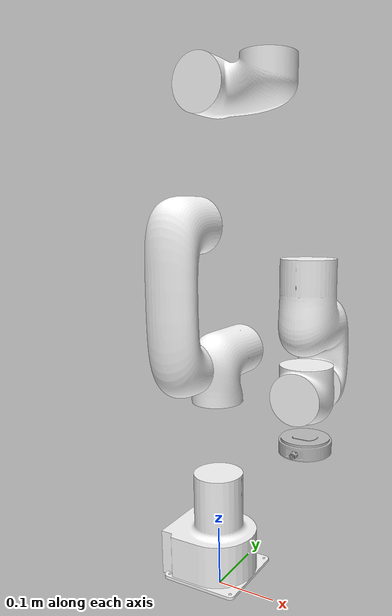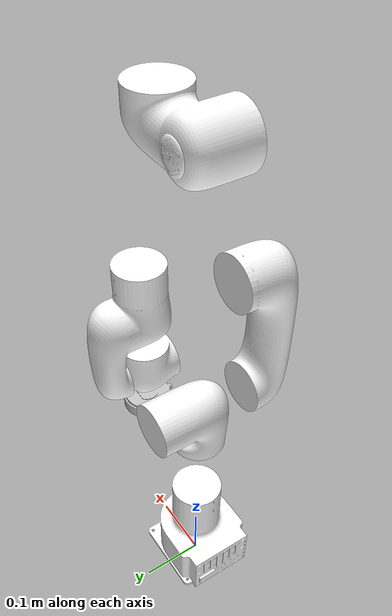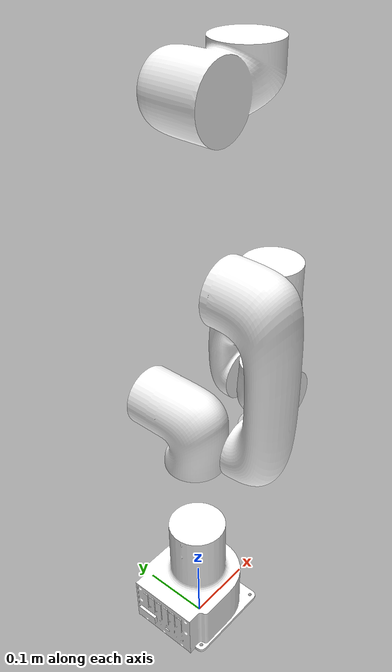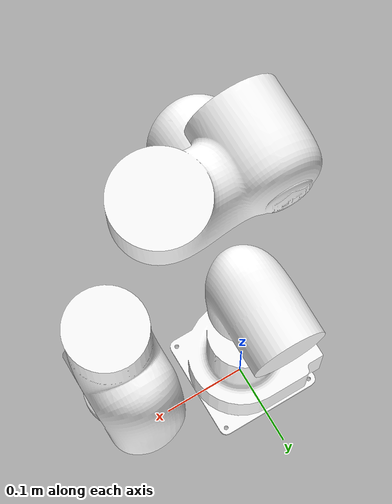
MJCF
<mujoco model="ufactory_uf850">
  <compiler angle="radian" meshdir="assets" autolimits="true"/>

  <option integrator="implicitfast"/>

  <default>
    <default class="uf850">
      <geom type="mesh"/>
      <joint axis="0 0 1" damping="1" armature="0.1"/>
      <position kp="2000" kv="200"/>
      <default class="size0">
        <position forcerange="-200 200"/>
      </default>
      <default class="size1">
        <position forcerange="-90 90"/>
      </default>
      <default class="size2">
        <position forcerange="-68 68"/>
      </default>
      <default class="size3">
        <position forcerange="-19 19"/>
      </default>
      <default class="visual">
        <geom contype="0" conaffinity="0" group="2" material="white"/>
      </default>
      <default class="collision">
        <geom group="3" mass="0" density="0"/>
      </default>
      <site size="0.001" rgba="0.5 0.5 0.5 0.3" group="4"/>
    </default>
  </default>

  <asset>
    <material name="white" rgba="1 1 1 1"/>
    <material name="silver" rgba=".753 .753 .753 1"/>

    <mesh file="visual/link_base.stl"/>
    <mesh file="visual/link1.stl"/>
    <mesh file="visual/link2.stl"/>
    <mesh file="visual/link3.stl"/>
    <mesh file="visual/link4.stl"/>
    <mesh file="visual/link5.stl"/>
    <mesh file="visual/link6.stl"/>
    <mesh name="link_base_c" file="collision/link_base.stl"/>
    <mesh name="link1_c" file="collision/link1.stl"/>
    <mesh name="link2_c" file="collision/link2.stl"/>
    <mesh name="link3_c" file="collision/link3.stl"/>
    <mesh name="link4_c" file="collision/link4.stl"/>
    <mesh name="link5_c" file="collision/link5.stl"/>
    <mesh name="link6_c" file="collision/link6.stl"/>
  </asset>

  <worldbody>
    <body name="link_base" pos="0 0 0.02570610177099758" childclass="uf850">
      <inertial pos="0 0 0" mass="4.0" diaginertia="0.0061063308908 0.0061063308908 0.01125"/>
      <geom class="visual" mesh="link_base"/>
      <geom name="link_base_c" class="collision" mesh="link_base_c"/>
      <body name="link1" pos="0 0 0.364">
        <inertial pos="5.7e-05 0.013842 -0.02055" quat="0.999624 -0.0273411 -0.000364635 -0.00185749" mass="4.807" diaginertia="0.0220018 0.0189206 0.0122503"/>
        <joint name="joint1" range="-6.28319 6.28319"/>
        <geom class="visual" mesh="link1"/>
        <geom name="link1_c" class="collision" mesh="link1_c"/>
        <body name="link2" quat="0.499998 0.5 -0.5 0.500002">
          <inertial pos="0.323425 9.5e-05 0.007586" quat="0.463878 0.532622 0.539126 0.458775" mass="3.28" diaginertia="0.0642088 0.0624144 0.00637301"/>
          <joint name="joint2" range="-2.30383 2.30383"/>
          <geom class="visual" mesh="link2"/>
          <geom name="link2_c" class="collision" mesh="link2_c"/>
          <body name="link3" pos="0.39 0 0" quat="-2.59734e-06 -0.707105 0.707108 2.59735e-06">
            <inertial pos="0.128834 0.11341 0.00978" quat="0.781477 0.318832 -0.496505 0.202789" mass="2.237" diaginertia="0.0155188 0.0144822 0.00312732"/>
            <joint name="joint3" range="-4.2237 0.061087"/>
            <geom class="visual" mesh="link3"/>
            <geom name="link3_c" class="collision" mesh="link3_c"/>
            <body name="link4" pos="0.15 0.426 0" quat="0.707105 -0.707108 0 0">
              <inertial pos="0.000266 -0.03833 -0.101915" quat="0.983546 0.180625 -0.00118669 -0.00323727" mass="2.041" diaginertia="0.0199188 0.0197497 0.00204912"/>
              <joint name="joint4" range="-6.28319 6.28319"/>
              <geom class="visual" mesh="link4"/>
              <geom name="link4_c" class="collision" mesh="link4_c"/>
              <body name="link5" quat="0.707105 -0.707108 0 0">
                <inertial pos="5.7e-05 -0.015267 -0.001015" quat="0.709629 0.704516 0.00436677 -0.00807823" mass="1.385" diaginertia="0.00207749 0.00203574 0.00110911"/>
                <joint name="joint5" range="-2.1642 2.1642"/>
                <geom class="visual" mesh="link5"/>
                <geom name="link5_c" class="collision" mesh="link5_c"/>
                <body name="link6" pos="0 -0.09 0" quat="0.707105 0.707108 0 0">
                  <inertial pos="0.000484 -0.000334 -0.014217" quat="0.63763 0.308332 -0.636717 0.30488" mass="0.225" diaginertia="0.000232503 0.000133671 0.000124886"/>
                  <joint name="joint6" range="-6.28319 6.28319"/>
                  <geom class="visual" mesh="link6" material="silver"/>
                  <geom name="link6_c" class="collision" mesh="link6_c"/>
                  <site name="attachment_site"/>
                </body>
              </body>
            </body>
          </body>
        </body>
      </body>
    </body>
  </worldbody>

  <actuator>
    <position name="joint1" joint="joint1" class="size0"/>
    <position name="joint2" joint="joint2" class="size0"/>
    <position name="joint3" joint="joint3" class="size1"/>
    <position name="joint4" joint="joint4" class="size2"/>
    <position name="joint5" joint="joint5" class="size3"/>
    <position name="joint6" joint="joint6" class="size3"/>
  </actuator>

  <keyframe>
    <key name="home" qpos="-1.5708 -1.5708 1.5708 -1.5708 -1.5708 0" ctrl="-1.5708 -1.5708 1.5708 -1.5708 -1.5708 0"/>
  </keyframe>
</mujoco>
